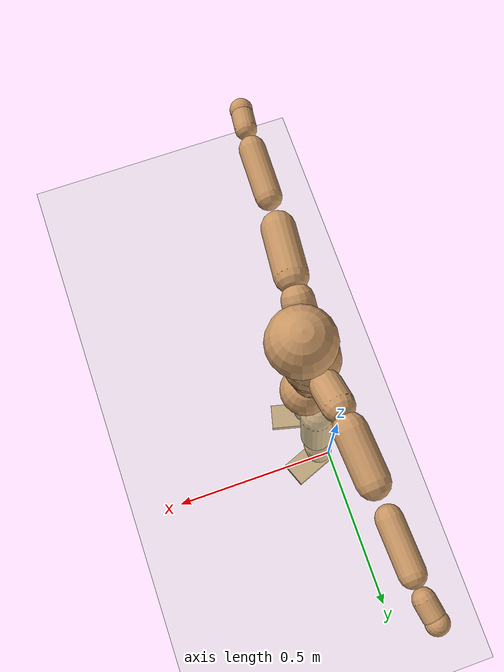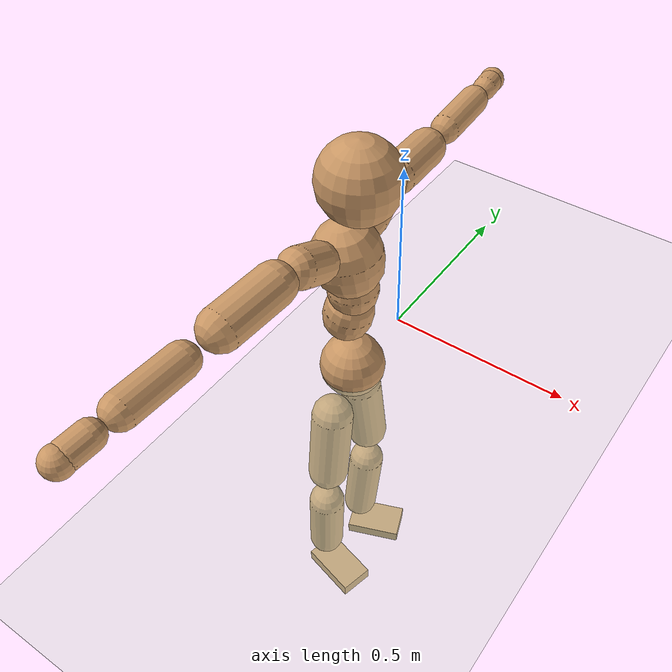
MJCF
<mujoco model="humanoid">
  <compiler coordinate="local"/>
  <default>
    <joint damping="0.0" armature="0.01" stiffness="0.0" limited="true"/>
    <geom conaffinity="1" condim="3" contype="7" margin="0.001" rgba="0.8 0.6 .4 1"/>
  </default>
  <asset>
    <texture type="skybox" builtin="gradient" rgb1=".4 .5 .6" rgb2="0 0 0" width="100" height="100"/>
    <texture builtin="flat" height="1278" mark="cross" markrgb="1 1 1" name="texgeom" random="0.01" rgb1="0.8 0.6 0.4" rgb2="0.8 0.6 0.4" type="cube" width="127"/>
    <texture builtin="checker" height="100" name="texplane" rgb1="0 0 0" rgb2="0.8 0.8 0.8" type="2d" width="100"/>
    <material name="MatPlane" reflectance="0.5" shininess="1" specular="1" texrepeat="60 60" texture="texplane"/>
    <material name="geom" texture="texgeom" texuniform="true"/>
  </asset>
  <worldbody>
    <light cutoff="100" diffuse="1 1 1" dir="-0 0 -1.3" directional="true" exponent="1" pos="0 0 1.3" specular=".1 .1 .1"/>
    <geom conaffinity="1" condim="3" name="floor" pos="0 0 0" rgba="0.8 0.9 0.8 1" size="100 100 .2" type="plane" material="MatPlane"/>
    <body name="Pelvis" pos="0 -0.2192 0.0168">
      <freejoint name="Pelvis"/>
      <geom type="sphere" contype="1" conaffinity="1" density="500" size="0.0868" pos="0.0000 0.0000 0.0000" name="Pelvis"/>
      <body name="L_Hip" pos="-0.0234 0.0554 -0.0778">
        <joint name="L_Hip_x" type="hinge" pos="0 0 0" axis="1 0 0" stiffness="800" damping="80" armature="0.02" range="-180.0000 180.0000"/>
        <joint name="L_Hip_y" type="hinge" pos="0 0 0" axis="0 1 0" stiffness="800" damping="80" armature="0.02" range="-180.0000 180.0000"/>
        <joint name="L_Hip_z" type="hinge" pos="0 0 0" axis="0 0 1" stiffness="800" damping="80" armature="0.02" range="-180.0000 180.0000"/>
        <geom type="capsule" contype="1" conaffinity="1" density="500" fromto="0.0014 0.0094 -0.0782 0.0055 0.0377 -0.3126" size="0.0585" name="L_Hip"/>
        <body name="L_Knee" pos="0.0069 0.0471 -0.3908">
          <joint name="L_Knee_x" type="hinge" pos="0 0 0" axis="1 0 0" stiffness="800" damping="80" armature="0.02" range="-180.0000 180.0000"/>
          <joint name="L_Knee_y" type="hinge" pos="0 0 0" axis="0 1 0" stiffness="800" damping="80" armature="0.02" range="-180.0000 180.0000"/>
          <joint name="L_Knee_z" type="hinge" pos="0 0 0" axis="0 0 1" stiffness="800" damping="80" armature="0.02" range="-180.0000 180.0000"/>
          <geom type="capsule" contype="1" conaffinity="1" density="500" fromto="-0.0068 -0.0026 -0.0836 -0.0273 -0.0103 -0.3344" size="0.0523" name="L_Knee"/>
          <body name="L_Ankle" pos="-0.0341 -0.0128 -0.418">
            <joint name="L_Ankle_x" type="hinge" pos="0 0 0" axis="1 0 0" stiffness="800" damping="80" armature="0.02" range="-180.0000 180.0000"/>
            <joint name="L_Ankle_y" type="hinge" pos="0 0 0" axis="0 1 0" stiffness="800" damping="80" armature="0.02" range="-180.0000 180.0000"/>
            <joint name="L_Ankle_z" type="hinge" pos="0 0 0" axis="0 0 1" stiffness="800" damping="80" armature="0.02" range="-180.0000 180.0000"/>
            <geom type="box" contype="1" conaffinity="1" density="500" pos="0.0591 0.0229 -0.0297" size="0.0846 0.0527 0.0199" quat="0.9830 0.0000 0.0000 0.1836" name="L_Ankle"/>
            <body name="L_Toe" pos="0.1183 0.0458 -0.0595">
              <joint name="L_Toe_x" type="hinge" pos="0 0 0" axis="1 0 0" stiffness="500" damping="50" armature="0.02" range="-180.0000 180.0000"/>
              <joint name="L_Toe_y" type="hinge" pos="0 0 0" axis="0 1 0" stiffness="500" damping="50" armature="0.02" range="-180.0000 180.0000"/>
              <joint name="L_Toe_z" type="hinge" pos="0 0 0" axis="0 0 1" stiffness="500" damping="50" armature="0.02" range="-180.0000 180.0000"/>
              <geom type="box" contype="1" conaffinity="1" density="500" pos="0.0000 0.0000 0.0305" size="0.001 0.0025 0.001" quat="0.9822 0.0000 0.0000 0.1879" name="L_Toe"/>
            </body>
          </body>
        </body>
      </body>
      <body name="R_Hip" pos="-0.0209 -0.0573 -0.085">
        <joint name="R_Hip_x" type="hinge" pos="0 0 0" axis="1 0 0" stiffness="800" damping="80" armature="0.02" range="-180.0000 180.0000"/>
        <joint name="R_Hip_y" type="hinge" pos="0 0 0" axis="0 1 0" stiffness="800" damping="80" armature="0.02" range="-180.0000 180.0000"/>
        <joint name="R_Hip_z" type="hinge" pos="0 0 0" axis="0 0 1" stiffness="800" damping="80" armature="0.02" range="-180.0000 180.0000"/>
        <geom type="capsule" contype="1" conaffinity="1" density="500" fromto="-0.0010 -0.0092 -0.0768 -0.0041 -0.0370 -0.3070" size="0.0578" name="R_Hip"/>
        <body name="R_Knee" pos="-0.0051 -0.0462 -0.3838">
          <joint name="R_Knee_x" type="hinge" pos="0 0 0" axis="1 0 0" stiffness="800" damping="80" armature="0.02" range="-180.0000 180.0000"/>
          <joint name="R_Knee_y" type="hinge" pos="0 0 0" axis="0 1 0" stiffness="800" damping="80" armature="0.02" range="-180.0000 180.0000"/>
          <joint name="R_Knee_z" type="hinge" pos="0 0 0" axis="0 0 1" stiffness="800" damping="80" armature="0.02" range="-180.0000 180.0000"/>
          <geom type="capsule" contype="1" conaffinity="1" density="500" fromto="-0.0063 0.0035 -0.0821 -0.0252 0.0142 -0.3285" size="0.0529" name="R_Knee"/>
          <body name="R_Ankle" pos="-0.0314 0.0177 -0.4106">
            <joint name="R_Ankle_x" type="hinge" pos="0 0 0" axis="1 0 0" stiffness="800" damping="80" armature="0.02" range="-180.0000 180.0000"/>
            <joint name="R_Ankle_y" type="hinge" pos="0 0 0" axis="0 1 0" stiffness="800" damping="80" armature="0.02" range="-180.0000 180.0000"/>
            <joint name="R_Ankle_z" type="hinge" pos="0 0 0" axis="0 0 1" stiffness="800" damping="80" armature="0.02" range="-180.0000 180.0000"/>
            <geom type="box" contype="1" conaffinity="1" density="500" pos="0.0635 -0.0159 -0.0313" size="0.089 0.0497 0.0213" quat="0.9925 0.0000 0.0000 -0.1220" name="R_Ankle"/>
            <body name="R_Toe" pos="0.127 -0.0317 -0.0626">
              <joint name="R_Toe_x" type="hinge" pos="0 0 0" axis="1 0 0" stiffness="500" damping="50" armature="0.02" range="-180.0000 180.0000"/>
              <joint name="R_Toe_y" type="hinge" pos="0 0 0" axis="0 1 0" stiffness="500" damping="50" armature="0.02" range="-180.0000 180.0000"/>
              <joint name="R_Toe_z" type="hinge" pos="0 0 0" axis="0 0 1" stiffness="500" damping="50" armature="0.02" range="-180.0000 180.0000"/>
              <geom type="box" contype="1" conaffinity="1" density="500" pos="0.0000 0.0000 0.0324" size="0.001 0.0024 0.0011" quat="0.9936 0.0000 0.0000 -0.1129" name="R_Toe"/>
            </body>
          </body>
        </body>
      </body>
      <body name="Torso" pos="-0.0278 0.0041 0.1131">
        <joint name="Torso_x" type="hinge" pos="0 0 0" axis="1 0 0" stiffness="1000" damping="100" armature="0.02" range="-180.0000 180.0000"/>
        <joint name="Torso_y" type="hinge" pos="0 0 0" axis="0 1 0" stiffness="1000" damping="100" armature="0.02" range="-180.0000 180.0000"/>
        <joint name="Torso_z" type="hinge" pos="0 0 0" axis="0 0 1" stiffness="1000" damping="100" armature="0.02" range="-180.0000 180.0000"/>
        <geom type="capsule" contype="1" conaffinity="1" density="500" fromto="0.0167 0.0019 0.0765 0.0111 0.0013 0.0510" size="0.06417" name="Torso"/>
        <body name="Spine" pos="0.0278 0.0032 0.1275">
          <joint name="Spine_x" type="hinge" pos="0 0 0" axis="1 0 0" stiffness="1000" damping="100" armature="0.02" range="-180.0000 180.0000"/>
          <joint name="Spine_y" type="hinge" pos="0 0 0" axis="0 1 0" stiffness="1000" damping="100" armature="0.02" range="-180.0000 180.0000"/>
          <joint name="Spine_z" type="hinge" pos="0 0 0" axis="0 0 1" stiffness="1000" damping="100" armature="0.02" range="-180.0000 180.0000"/>
          <geom type="capsule" contype="1" conaffinity="1" density="500" fromto="0.0007 -0.0014 0.0311 0.0005 -0.0010 0.0207" size="0.064542" name="Spine"/>
          <body name="Chest" pos="0.0012 -0.0024 0.0518">
            <joint name="Chest_x" type="hinge" pos="0 0 0" axis="1 0 0" stiffness="1000" damping="100" armature="0.02" range="-180.0000 180.0000"/>
            <joint name="Chest_y" type="hinge" pos="0 0 0" axis="0 1 0" stiffness="1000" damping="100" armature="0.02" range="-180.0000 180.0000"/>
            <joint name="Chest_z" type="hinge" pos="0 0 0" axis="0 0 1" stiffness="1000" damping="100" armature="0.02" range="-180.0000 180.0000"/>
            <geom type="capsule" contype="1" conaffinity="1" density="500" fromto="-0.0124 -0.0052 0.0836 -0.0083 -0.0035 0.0558" size="0.086676" name="Chest"/>
            <body name="Neck" pos="-0.0253 -0.0136 0.2028">
              <joint name="Neck_x" type="hinge" pos="0 0 0" axis="1 0 0" stiffness="500" damping="50" armature="0.02" range="-180.0000 180.0000"/>
              <joint name="Neck_y" type="hinge" pos="0 0 0" axis="0 1 0" stiffness="500" damping="50" armature="0.02" range="-180.0000 180.0000"/>
              <joint name="Neck_z" type="hinge" pos="0 0 0" axis="0 0 1" stiffness="500" damping="50" armature="0.02" range="-180.0000 180.0000"/>
              <geom type="capsule" contype="1" conaffinity="1" density="500" fromto="0.0099 0.0019 0.0189 0.0397 0.0077 0.0755" size="0.039804" name="Neck"/>
              <body name="Head" pos="0.0496 0.0097 0.0944">
                <joint name="Head_x" type="hinge" pos="0 0 0" axis="1 0 0" stiffness="500" damping="50" armature="0.02" range="-180.0000 180.0000"/>
                <joint name="Head_y" type="hinge" pos="0 0 0" axis="0 1 0" stiffness="500" damping="50" armature="0.02" range="-180.0000 180.0000"/>
                <joint name="Head_z" type="hinge" pos="0 0 0" axis="0 0 1" stiffness="500" damping="50" armature="0.02" range="-180.0000 180.0000"/>
                <geom type="sphere" contype="1" conaffinity="1" density="500" size="0.1005" pos="0.0000 0.0000 0.0000" name="Head"/>
              </body>
            </body>
            <body name="L_Thorax" pos="-0.0163 0.0669 0.1078">
              <joint name="L_Thorax_x" type="hinge" pos="0 0 0" axis="1 0 0" stiffness="500" damping="50" armature="0.02" range="-180.0000 180.0000"/>
              <joint name="L_Thorax_y" type="hinge" pos="0 0 0" axis="0 1 0" stiffness="500" damping="50" armature="0.02" range="-180.0000 180.0000"/>
              <joint name="L_Thorax_z" type="hinge" pos="0 0 0" axis="0 0 1" stiffness="500" damping="50" armature="0.02" range="-180.0000 180.0000"/>
              <geom type="capsule" contype="1" conaffinity="1" density="500" fromto="-0.0029 0.0232 0.0091 -0.0115 0.0928 0.0366" size="0.0489" name="L_Thorax"/>
              <body name="L_Shoulder" pos="-0.0144 0.116 0.0457">
                <joint name="L_Shoulder_x" type="hinge" pos="0 0 0" axis="1 0 0" stiffness="500" damping="50" armature="0.02" range="-720.0000 720.0000"/>
                <joint name="L_Shoulder_y" type="hinge" pos="0 0 0" axis="0 1 0" stiffness="500" damping="50" armature="0.02" range="-720.0000 720.0000"/>
                <joint name="L_Shoulder_z" type="hinge" pos="0 0 0" axis="0 0 1" stiffness="500" damping="50" armature="0.02" range="-720.0000 720.0000"/>
                <geom type="capsule" contype="1" conaffinity="1" density="500" fromto="-0.0035 0.0511 -0.0034 -0.0140 0.2043 -0.0138" size="0.0504" name="L_Shoulder"/>
                <body name="L_Elbow" pos="-0.0175 0.2554 -0.0172">
                  <joint name="L_Elbow_x" type="hinge" pos="0 0 0" axis="1 0 0" stiffness="500" damping="50" armature="0.02" range="-720.0000 720.0000"/>
                  <joint name="L_Elbow_y" type="hinge" pos="0 0 0" axis="0 1 0" stiffness="500" damping="50" armature="0.02" range="-720.0000 720.0000"/>
                  <joint name="L_Elbow_z" type="hinge" pos="0 0 0" axis="0 0 1" stiffness="500" damping="50" armature="0.02" range="-720.0000 720.0000"/>
                  <geom type="capsule" contype="1" conaffinity="1" density="500" fromto="-0.0018 0.0518 0.0021 -0.0072 0.2071 0.0086" size="0.0393" name="L_Elbow"/>
                  <body name="L_Wrist" pos="-0.0089 0.2589 0.0107">
                    <joint name="L_Wrist_x" type="hinge" pos="0 0 0" axis="1 0 0" stiffness="300" damping="30" armature="0.02" range="-180.0000 180.0000"/>
                    <joint name="L_Wrist_y" type="hinge" pos="0 0 0" axis="0 1 0" stiffness="300" damping="30" armature="0.02" range="-180.0000 180.0000"/>
                    <joint name="L_Wrist_z" type="hinge" pos="0 0 0" axis="0 0 1" stiffness="300" damping="30" armature="0.02" range="-180.0000 180.0000"/>
                    <geom type="capsule" contype="1" conaffinity="1" density="500" fromto="-0.0030 0.0167 -0.0020 -0.0122 0.0669 -0.0082" size="0.0325" name="L_Wrist"/>
                    <body name="L_Hand" pos="-0.0152 0.0836 -0.0102">
                      <joint name="L_Hand_x" type="hinge" pos="0 0 0" axis="1 0 0" stiffness="300" damping="30" armature="0.02" range="-180.0000 180.0000"/>
                      <joint name="L_Hand_y" type="hinge" pos="0 0 0" axis="0 1 0" stiffness="300" damping="30" armature="0.02" range="-180.0000 180.0000"/>
                      <joint name="L_Hand_z" type="hinge" pos="0 0 0" axis="0 0 1" stiffness="300" damping="30" armature="0.02" range="-180.0000 180.0000"/>
                      <geom type="sphere" contype="1" conaffinity="1" density="500" size="0.0342" pos="0.0000 0.0000 0.0000" name="L_Hand"/>
                    </body>
                  </body>
                </body>
              </body>
            </body>
            <body name="R_Thorax" pos="-0.0204 -0.0793 0.1076">
              <joint name="R_Thorax_x" type="hinge" pos="0 0 0" axis="1 0 0" stiffness="500" damping="50" armature="0.02" range="-180.0000 180.0000"/>
              <joint name="R_Thorax_y" type="hinge" pos="0 0 0" axis="0 1 0" stiffness="500" damping="50" armature="0.02" range="-180.0000 180.0000"/>
              <joint name="R_Thorax_z" type="hinge" pos="0 0 0" axis="0 0 1" stiffness="500" damping="50" armature="0.02" range="-180.0000 180.0000"/>
              <geom type="capsule" contype="1" conaffinity="1" density="500" fromto="-0.0010 -0.0216 0.0096 -0.0039 -0.0864 0.0386" size="0.0498" name="R_Thorax"/>
              <body name="R_Shoulder" pos="-0.0049 -0.108 0.0482">
                <joint name="R_Shoulder_x" type="hinge" pos="0 0 0" axis="1 0 0" stiffness="500" damping="50" armature="0.02" range="-720.0000 720.0000"/>
                <joint name="R_Shoulder_y" type="hinge" pos="0 0 0" axis="0 1 0" stiffness="500" damping="50" armature="0.02" range="-720.0000 720.0000"/>
                <joint name="R_Shoulder_z" type="hinge" pos="0 0 0" axis="0 0 1" stiffness="500" damping="50" armature="0.02" range="-720.0000 720.0000"/>
                <geom type="capsule" contype="1" conaffinity="1" density="500" fromto="-0.0050 -0.0518 -0.0039 -0.0201 -0.2072 -0.0155" size="0.0522" name="R_Shoulder"/>
                <body name="R_Elbow" pos="-0.0251 -0.2589 -0.0194">
                  <joint name="R_Elbow_x" type="hinge" pos="0 0 0" axis="1 0 0" stiffness="500" damping="50" armature="0.02" range="-720.0000 720.0000"/>
                  <joint name="R_Elbow_y" type="hinge" pos="0 0 0" axis="0 1 0" stiffness="500" damping="50" armature="0.02" range="-720.0000 720.0000"/>
                  <joint name="R_Elbow_z" type="hinge" pos="0 0 0" axis="0 0 1" stiffness="500" damping="50" armature="0.02" range="-720.0000 720.0000"/>
                  <geom type="capsule" contype="1" conaffinity="1" density="500" fromto="-0.0012 -0.0533 0.0016 -0.0049 -0.2133 0.0064" size="0.0406" name="R_Elbow"/>
                  <body name="R_Wrist" pos="-0.0062 -0.2667 0.008">
                    <joint name="R_Wrist_x" type="hinge" pos="0 0 0" axis="1 0 0" stiffness="300" damping="30" armature="0.02" range="-180.0000 180.0000"/>
                    <joint name="R_Wrist_y" type="hinge" pos="0 0 0" axis="0 1 0" stiffness="300" damping="30" armature="0.02" range="-180.0000 180.0000"/>
                    <joint name="R_Wrist_z" type="hinge" pos="0 0 0" axis="0 0 1" stiffness="300" damping="30" armature="0.02" range="-180.0000 180.0000"/>
                    <geom type="capsule" contype="1" conaffinity="1" density="500" fromto="-0.0020 -0.0173 -0.0017 -0.0080 -0.0691 -0.0066" size="0.0336" name="R_Wrist"/>
                    <body name="R_Hand" pos="-0.01 -0.0864 -0.0083">
                      <joint name="R_Hand_x" type="hinge" pos="0 0 0" axis="1 0 0" stiffness="300" damping="30" armature="0.02" range="-180.0000 180.0000"/>
                      <joint name="R_Hand_y" type="hinge" pos="0 0 0" axis="0 1 0" stiffness="300" damping="30" armature="0.02" range="-180.0000 180.0000"/>
                      <joint name="R_Hand_z" type="hinge" pos="0 0 0" axis="0 0 1" stiffness="300" damping="30" armature="0.02" range="-180.0000 180.0000"/>
                      <geom type="sphere" contype="1" conaffinity="1" density="500" size="0.0351" pos="0.0000 0.0000 0.0000" name="R_Hand"/>
                    </body>
                  </body>
                </body>
              </body>
            </body>
          </body>
        </body>
      </body>
    </body>
  </worldbody>
  <actuator>
    <motor name="L_Hip_x" joint="L_Hip_x" gear="500"/>
    <motor name="L_Hip_y" joint="L_Hip_y" gear="500"/>
    <motor name="L_Hip_z" joint="L_Hip_z" gear="500"/>
    <motor name="L_Knee_x" joint="L_Knee_x" gear="500"/>
    <motor name="L_Knee_y" joint="L_Knee_y" gear="500"/>
    <motor name="L_Knee_z" joint="L_Knee_z" gear="500"/>
    <motor name="L_Ankle_x" joint="L_Ankle_x" gear="500"/>
    <motor name="L_Ankle_y" joint="L_Ankle_y" gear="500"/>
    <motor name="L_Ankle_z" joint="L_Ankle_z" gear="500"/>
    <motor name="L_Toe_x" joint="L_Toe_x" gear="500"/>
    <motor name="L_Toe_y" joint="L_Toe_y" gear="500"/>
    <motor name="L_Toe_z" joint="L_Toe_z" gear="500"/>
    <motor name="R_Hip_x" joint="R_Hip_x" gear="500"/>
    <motor name="R_Hip_y" joint="R_Hip_y" gear="500"/>
    <motor name="R_Hip_z" joint="R_Hip_z" gear="500"/>
    <motor name="R_Knee_x" joint="R_Knee_x" gear="500"/>
    <motor name="R_Knee_y" joint="R_Knee_y" gear="500"/>
    <motor name="R_Knee_z" joint="R_Knee_z" gear="500"/>
    <motor name="R_Ankle_x" joint="R_Ankle_x" gear="500"/>
    <motor name="R_Ankle_y" joint="R_Ankle_y" gear="500"/>
    <motor name="R_Ankle_z" joint="R_Ankle_z" gear="500"/>
    <motor name="R_Toe_x" joint="R_Toe_x" gear="500"/>
    <motor name="R_Toe_y" joint="R_Toe_y" gear="500"/>
    <motor name="R_Toe_z" joint="R_Toe_z" gear="500"/>
    <motor name="Torso_x" joint="Torso_x" gear="500"/>
    <motor name="Torso_y" joint="Torso_y" gear="500"/>
    <motor name="Torso_z" joint="Torso_z" gear="500"/>
    <motor name="Spine_x" joint="Spine_x" gear="500"/>
    <motor name="Spine_y" joint="Spine_y" gear="500"/>
    <motor name="Spine_z" joint="Spine_z" gear="500"/>
    <motor name="Chest_x" joint="Chest_x" gear="500"/>
    <motor name="Chest_y" joint="Chest_y" gear="500"/>
    <motor name="Chest_z" joint="Chest_z" gear="500"/>
    <motor name="Neck_x" joint="Neck_x" gear="500"/>
    <motor name="Neck_y" joint="Neck_y" gear="500"/>
    <motor name="Neck_z" joint="Neck_z" gear="500"/>
    <motor name="Head_x" joint="Head_x" gear="500"/>
    <motor name="Head_y" joint="Head_y" gear="500"/>
    <motor name="Head_z" joint="Head_z" gear="500"/>
    <motor name="L_Thorax_x" joint="L_Thorax_x" gear="500"/>
    <motor name="L_Thorax_y" joint="L_Thorax_y" gear="500"/>
    <motor name="L_Thorax_z" joint="L_Thorax_z" gear="500"/>
    <motor name="L_Shoulder_x" joint="L_Shoulder_x" gear="500"/>
    <motor name="L_Shoulder_y" joint="L_Shoulder_y" gear="500"/>
    <motor name="L_Shoulder_z" joint="L_Shoulder_z" gear="500"/>
    <motor name="L_Elbow_x" joint="L_Elbow_x" gear="500"/>
    <motor name="L_Elbow_y" joint="L_Elbow_y" gear="500"/>
    <motor name="L_Elbow_z" joint="L_Elbow_z" gear="500"/>
    <motor name="L_Wrist_x" joint="L_Wrist_x" gear="500"/>
    <motor name="L_Wrist_y" joint="L_Wrist_y" gear="500"/>
    <motor name="L_Wrist_z" joint="L_Wrist_z" gear="500"/>
    <motor name="L_Hand_x" joint="L_Hand_x" gear="500"/>
    <motor name="L_Hand_y" joint="L_Hand_y" gear="500"/>
    <motor name="L_Hand_z" joint="L_Hand_z" gear="500"/>
    <motor name="R_Thorax_x" joint="R_Thorax_x" gear="500"/>
    <motor name="R_Thorax_y" joint="R_Thorax_y" gear="500"/>
    <motor name="R_Thorax_z" joint="R_Thorax_z" gear="500"/>
    <motor name="R_Shoulder_x" joint="R_Shoulder_x" gear="500"/>
    <motor name="R_Shoulder_y" joint="R_Shoulder_y" gear="500"/>
    <motor name="R_Shoulder_z" joint="R_Shoulder_z" gear="500"/>
    <motor name="R_Elbow_x" joint="R_Elbow_x" gear="500"/>
    <motor name="R_Elbow_y" joint="R_Elbow_y" gear="500"/>
    <motor name="R_Elbow_z" joint="R_Elbow_z" gear="500"/>
    <motor name="R_Wrist_x" joint="R_Wrist_x" gear="500"/>
    <motor name="R_Wrist_y" joint="R_Wrist_y" gear="500"/>
    <motor name="R_Wrist_z" joint="R_Wrist_z" gear="500"/>
    <motor name="R_Hand_x" joint="R_Hand_x" gear="500"/>
    <motor name="R_Hand_y" joint="R_Hand_y" gear="500"/>
    <motor name="R_Hand_z" joint="R_Hand_z" gear="500"/>
  </actuator>
  <contact>
    <exclude body1="Torso" body2="Chest"/>
    <exclude body1="Head" body2="Chest"/>
    <exclude body1="R_Knee" body2="R_Toe"/>
    <exclude body1="R_Knee" body2="L_Ankle"/>
    <exclude body1="R_Knee" body2="L_Toe"/>
    <exclude body1="L_Knee" body2="L_Toe"/>
    <exclude body1="L_Knee" body2="R_Ankle"/>
    <exclude body1="L_Knee" body2="R_Toe"/>
    <exclude body1="L_Shoulder" body2="Chest"/>
    <exclude body1="R_Shoulder" body2="Chest"/>
  </contact>
  <sensor/>
  <size njmax="700" nconmax="700"/>
</mujoco>
